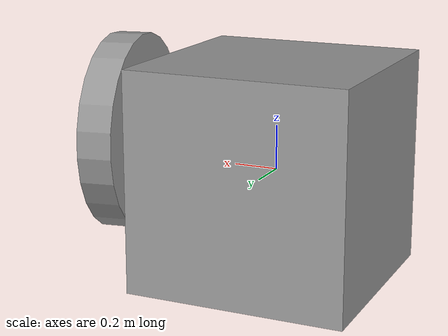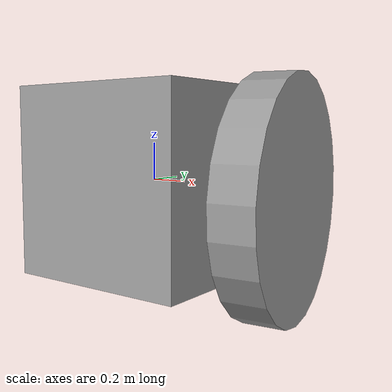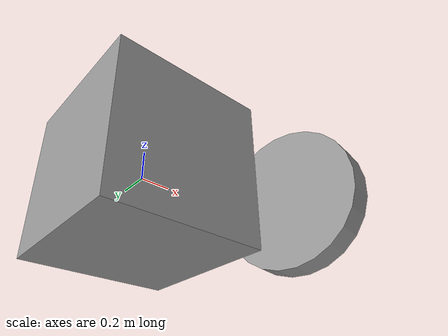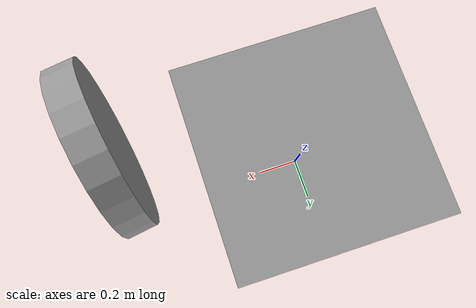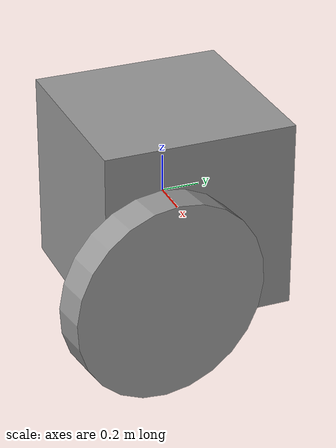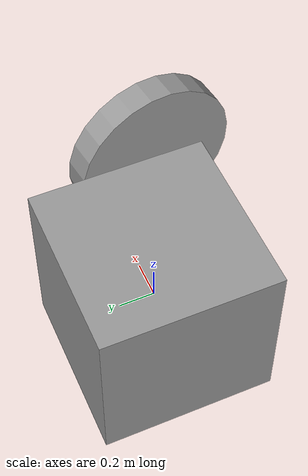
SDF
<?xml version='1.0'?>
<sdf version='1.6'>
  <model name='unit_box'>
    <link name='link'>
      <pose frame=''>0 0 0 0 -0 0</pose>
      <inertial>
        <mass>1</mass>
        <inertia>
          <ixx>0.166667</ixx>
          <ixy>0</ixy>
          <ixz>0</ixz>
          <iyy>0.166667</iyy>
          <iyz>0</iyz>
          <izz>0.166667</izz>
        </inertia>
      </inertial>
      <self_collide>0</self_collide>
      <kinematic>0</kinematic>
      <visual name='visual'>
        <geometry>
          <box>
            <size>1 1 1</size>
          </box>
        </geometry>
        <material>
          <script>
            <name>Gazebo/Grey</name>
            <uri>file://media/materials/scripts/gazebo.material</uri>
          </script>
          <shader type='pixel'/>
          <ambient>0.3 0.3 0.3 1</ambient>
          <diffuse>0.7 0.7 0.7 1</diffuse>
          <specular>0.01 0.01 0.01 1</specular>
          <emissive>0 0 0 1</emissive>
        </material>
        <pose frame=''>0 0 0 0 -0 0</pose>
        <transparency>0</transparency>
        <cast_shadows>1</cast_shadows>
      </visual>
      <collision name='collision'>
        <laser_retro>0</laser_retro>
        <max_contacts>10</max_contacts>
        <pose frame=''>0 0 0 0 -0 0</pose>
        <geometry>
          <box>
            <size>1 1 1</size>
          </box>
        </geometry>
        <surface>
          <friction>
            <ode>
              <mu>1</mu>
              <mu2>1</mu2>
              <fdir1>0 0 0</fdir1>
              <slip1>0</slip1>
              <slip2>0</slip2>
            </ode>
            <torsional>
              <coefficient>1</coefficient>
              <patch_radius>0</patch_radius>
              <surface_radius>0</surface_radius>
              <use_patch_radius>1</use_patch_radius>
              <ode>
                <slip>0</slip>
              </ode>
            </torsional>
          </friction>
          <bounce>
            <restitution_coefficient>0</restitution_coefficient>
            <threshold>1e+06</threshold>
          </bounce>
          <contact>
            <collide_without_contact>0</collide_without_contact>
            <collide_without_contact_bitmask>1</collide_without_contact_bitmask>
            <collide_bitmask>1</collide_bitmask>
            <ode>
              <soft_cfm>0</soft_cfm>
              <soft_erp>0.2</soft_erp>
              <kp>1e+13</kp>
              <kd>1</kd>
              <max_vel>0.01</max_vel>
              <min_depth>0</min_depth>
            </ode>
            <bullet>
              <split_impulse>1</split_impulse>
              <split_impulse_penetration_threshold>-0.01</split_impulse_penetration_threshold>
              <soft_cfm>0</soft_cfm>
              <soft_erp>0.2</soft_erp>
              <kp>1e+13</kp>
              <kd>1</kd>
            </bullet>
          </contact>
        </surface>
      </collision>
    </link>
    <link name='link_0'>
      <pose frame=''>0.962068 -0.389952 1e-06 -1.57987 -0.06372 -1.42919</pose>
      <inertial>
        <mass>0.172143</mass>
        <inertia>
          <ixx>0.011184</ixx>
          <ixy>0</ixy>
          <ixz>0</ixz>
          <iyy>0.011184</iyy>
          <iyz>0</iyz>
          <izz>0.0215179</izz>
        </inertia>
        <pose frame=''>0 0 0 0 -0 0</pose>
      </inertial>
      <visual name='visual'>
        <pose frame=''>0 0 0 0 -0 0</pose>
        <geometry>
          <cylinder>
            <radius>0.5</radius>
            <length>0.172144</length>
          </cylinder>
        </geometry>
        <material>
          <lighting>1</lighting>
          <script>
            <uri>file://media/materials/scripts/gazebo.material</uri>
            <name>Gazebo/Grey</name>
          </script>
          <shader type='pixel'/>
          <ambient>0.3 0.3 0.3 1</ambient>
          <diffuse>0.7 0.7 0.7 1</diffuse>
          <specular>0.01 0.01 0.01 1</specular>
          <emissive>0 0 0 1</emissive>
        </material>
        <transparency>0</transparency>
        <cast_shadows>1</cast_shadows>
      </visual>
      <collision name='collision'>
        <laser_retro>0</laser_retro>
        <max_contacts>10</max_contacts>
        <pose frame=''>0 0 0 0 -0 0</pose>
        <geometry>
          <cylinder>
            <radius>0.5</radius>
            <length>0.172144</length>
          </cylinder>
        </geometry>
        <surface>
          <friction>
            <ode>
              <mu>1</mu>
              <mu2>1</mu2>
              <fdir1>0 0 0</fdir1>
              <slip1>0</slip1>
              <slip2>0</slip2>
            </ode>
            <torsional>
              <coefficient>1</coefficient>
              <patch_radius>0</patch_radius>
              <surface_radius>0</surface_radius>
              <use_patch_radius>1</use_patch_radius>
              <ode>
                <slip>0</slip>
              </ode>
            </torsional>
          </friction>
          <bounce>
            <restitution_coefficient>0</restitution_coefficient>
            <threshold>1e+06</threshold>
          </bounce>
          <contact>
            <collide_without_contact>0</collide_without_contact>
            <collide_without_contact_bitmask>1</collide_without_contact_bitmask>
            <collide_bitmask>1</collide_bitmask>
            <ode>
              <soft_cfm>0</soft_cfm>
              <soft_erp>0.2</soft_erp>
              <kp>1e+13</kp>
              <kd>1</kd>
              <max_vel>0.01</max_vel>
              <min_depth>0</min_depth>
            </ode>
            <bullet>
              <split_impulse>1</split_impulse>
              <split_impulse_penetration_threshold>-0.01</split_impulse_penetration_threshold>
              <soft_cfm>0</soft_cfm>
              <soft_erp>0.2</soft_erp>
              <kp>1e+13</kp>
              <kd>1</kd>
            </bullet>
          </contact>
        </surface>
      </collision>
    </link>
    <joint name='link_0_JOINT_0' type='revolute'>
      <parent>link_0</parent>
      <child>link</child>
      <pose frame=''>0 0 0 0 -0 0</pose>
      <axis>
        <xyz>1 0 0</xyz>
        <use_parent_model_frame>0</use_parent_model_frame>
        <limit>
          <lower>-1.79769e+308</lower>
          <upper>1.79769e+308</upper>
          <effort>-1</effort>
          <velocity>-1</velocity>
        </limit>
        <dynamics>
          <spring_reference>0</spring_reference>
          <spring_stiffness>0</spring_stiffness>
          <damping>0</damping>
        </dynamics>
      </axis>
      <physics>
        <ode>
          <limit>
            <cfm>0</cfm>
            <erp>0.2</erp>
          </limit>
          <suspension>
            <cfm>0</cfm>
            <erp>0.2</erp>
          </suspension>
        </ode>
      </physics>
    </joint>
    <static>0</static>
    <allow_auto_disable>1</allow_auto_disable>
  </model>
</sdf>
